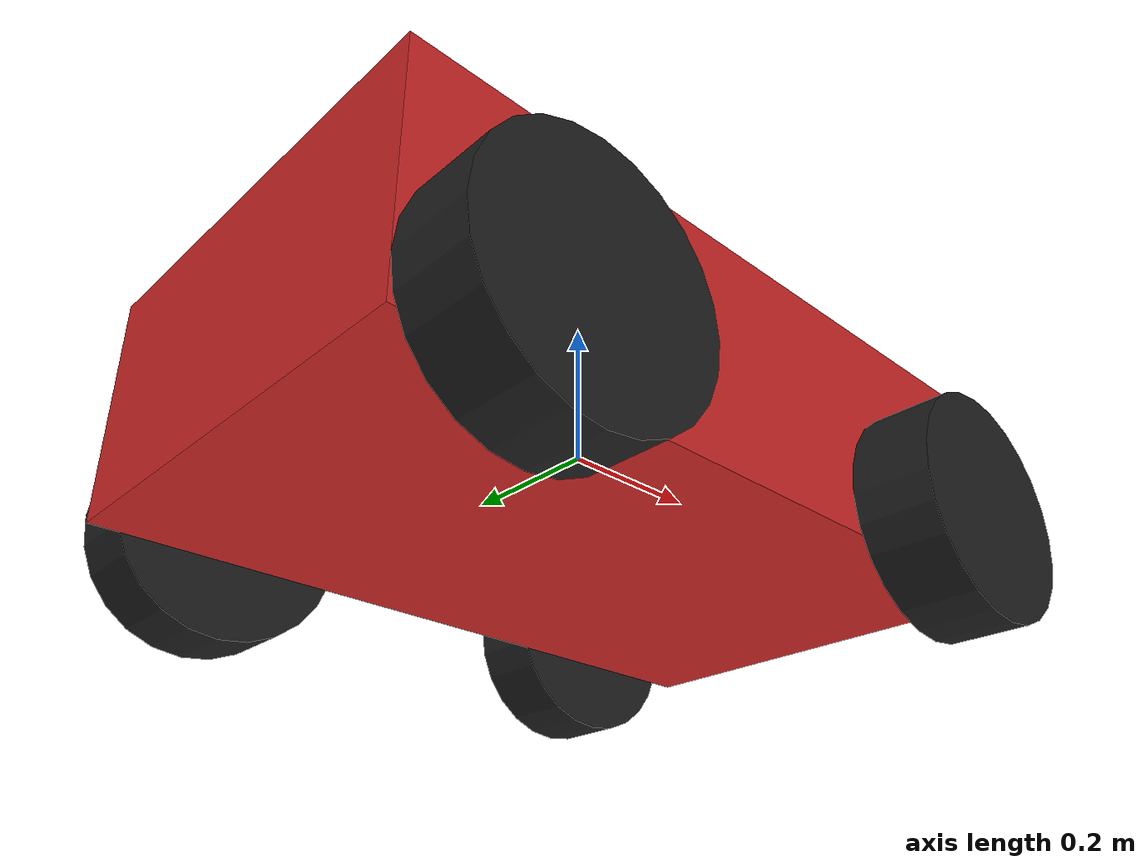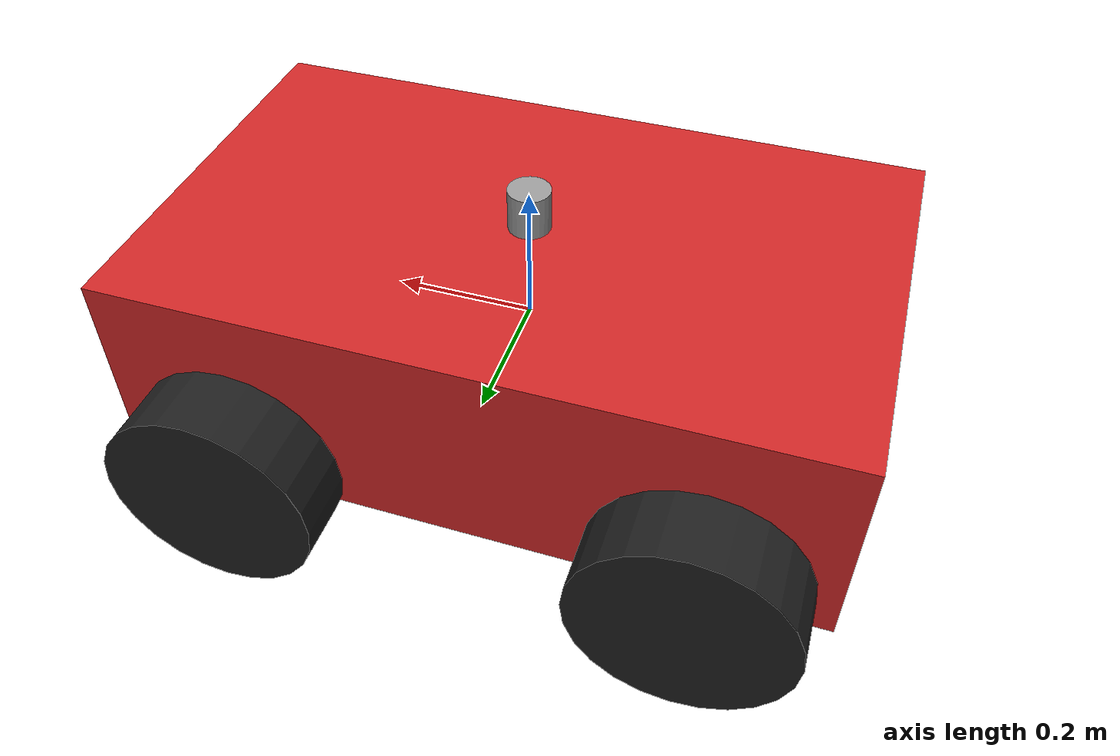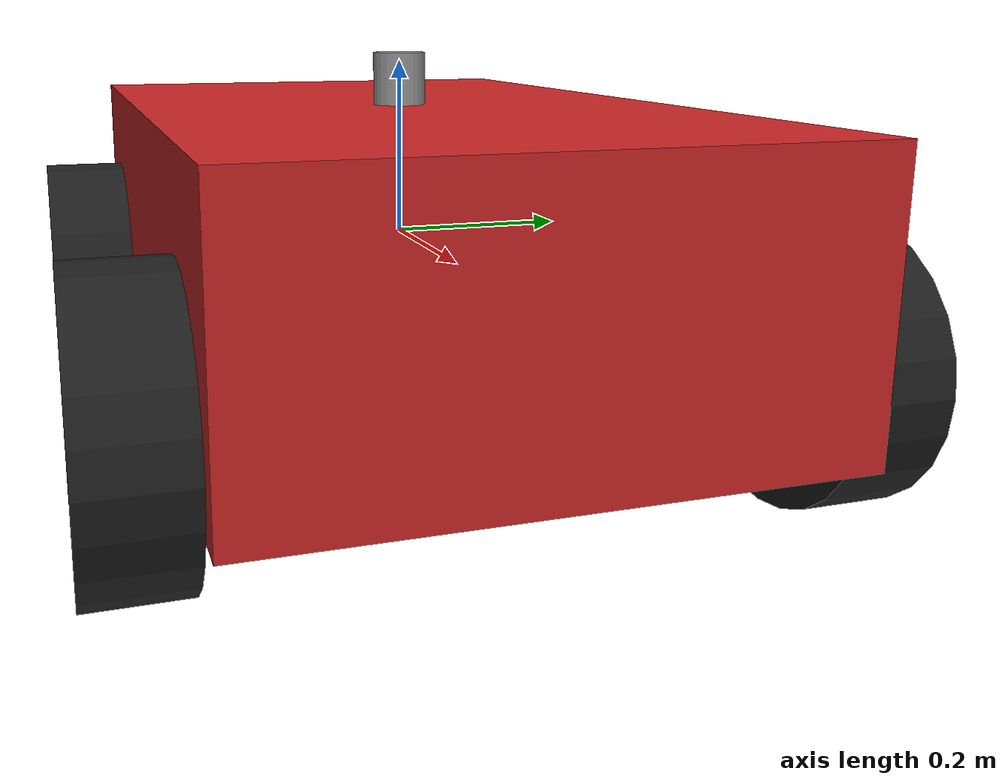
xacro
<?xml version="1.0"?>

<robot name="differential_drive_robot" xmlns:xacro="http://www.ros.org/wiki/xacro">

  <!-- Define robot parameters -->
  <xacro:property name="body_link_x_dim" value="1"/>
  <xacro:property name="body_link_y_dim" value="0.6"/>
  <xacro:property name="body_link_z_dim" value="0.3"/>

  <!-- Wheel dimensions -->
  <xacro:property name="wheel_link_radius" value="0.15"/>
  <xacro:property name="wheel_link_length" value="0.1"/>
  <xacro:property name="wheel_link_z_location" value="-0.1"/>

  <!-- Material Density -->
  <xacro:property name="body_density" value="2710.0"/>
  <xacro:property name="wheel_density" value="2710.0"/>

  <!-- Pi constant -->
  <xacro:property name="pi" value="3.14159"/>

  <!-- Robot body and wheel mass -->
  <xacro:property name="body_mass" value="${body_density * body_link_x_dim * body_link_y_dim * body_link_z_dim}"/>
  <xacro:property name="wheel_mass" value="${wheel_density * pi * wheel_link_radius * wheel_link_radius * wheel_link_length}"/>

  <!-- Moments of inertia of the wheels -->
    <xacro:property name="Iz_wheel" value="${0.5 * wheel_mass * wheel_link_radius * wheel_link_radius}"/>
    <xacro:property name="I_wheel" value="${(1.0/12.0) * wheel_mass * (3 * wheel_link_radius * wheel_link_radius + wheel_link_length * wheel_link_length)}"/>

    <!-- Complete inertal section of the wheels -->
    <xacro:macro name="inertia_wheel">
      <inertial>
        <origin xyz="0 0 0" rpy="0 0 0"/>
        <mass value="${wheel_mass}"/>
        <inertia ixx="${I_wheel}" ixy="0" ixz="0" iyy="${I_wheel}" iyz="0" izz="${Iz_wheel}"/>
        </inertial>
    </xacro:macro>

    <xacro:include filename="$(find mobile_robot)/model/robot.gazebo"/>

    <!-- FROM HERE WE DEFINE LINKS AND JOINTS -->

    <!-- Dummy Link -->
    <link name="dummy">
    </link>
    <joint name="dummy_joint" type="fixed">
      <parent link="dummy"/>
      <child link="body_link"/>
      <origin xyz="0 0 0" rpy="0 0 0"/>
    </joint>

    <!-- Body Link -->
    <link name="body_link">
        <visual>
            <origin xyz="0 0 0" rpy="0 0 0"/>
            <geometry>
                <box size="${body_link_x_dim} ${body_link_y_dim} ${body_link_z_dim}"/>
            </geometry>
        </visual>
        <collision>
            <origin xyz="0 0 0" rpy="0 0 0"/>
            <geometry>
                <box size="${body_link_x_dim} ${body_link_y_dim} ${body_link_z_dim}"/>
            </geometry>
        </collision>
        <inertial>
            <origin xyz="0 0 0" rpy="0 0 0"/>
            <mass value="${body_mass}"/>
            <inertia ixx="${(1.0/12.0) * body_mass * (body_link_y_dim * body_link_y_dim + body_link_z_dim * body_link_z_dim)}"
                     ixy="0" ixz="0"
                     iyy="${(1.0/12.0) * body_mass * (body_link_x_dim * body_link_x_dim + body_link_z_dim * body_link_z_dim)}"
                     iyz="0"
                     izz="${(1.0/12.0) * body_mass * (body_link_x_dim * body_link_x_dim + body_link_y_dim * body_link_y_dim)}"/>
        </inertial>
    </link>

    <!-- Back right Wheel Link and joint -->
    <joint name="wheel1_joint" type="continuous">
      <parent link="body_link"/>
       <child link="wheel1_link"/>
       <origin xyz="${-body_link_x_dim/2+1*wheel_link_radius} ${-body_link_y_dim/2-wheel_link_length/2} ${wheel_link_z_location}" rpy="0 0 0"/>
       <axis xyz="0 1 0"/>
       <limit effort="1000" velocity="1000"/>
       <dynamics damping="1" friction="1"/>
    </joint>

    <link name="wheel1_link">
      <visual>
        <origin xyz="0 0 0" rpy="1.570795 0 0"/>
        <geometry>
          <cylinder radius="${wheel_link_radius}" length="${wheel_link_length}"/>
        </geometry>
      </visual>
      <collision>
        <origin xyz="0 0 0" rpy="1.570795 0 0"/>
        <geometry>
          <cylinder radius="${wheel_link_radius}" length="${wheel_link_length}"/>
        </geometry>
      </collision>
      <xacro:inertia_wheel/>
    </link>

    <!-- Back left Wheel Link and joint -->
    <joint name="wheel2_joint" type="continuous">
        <parent link="body_link"/>
        <child link="wheel2_link"/>
        <origin xyz="${-body_link_x_dim/2+1.2*wheel_link_radius} ${body_link_y_dim/2+wheel_link_length/2} ${wheel_link_z_location}" rpy="0 0 0"/>
        <axis xyz="0 1 0"/>
        <limit effort="1000" velocity="1000"/>
        <dynamics damping="1" friction="1"/>
    </joint>

    <link name="wheel2_link">
      <visual>
        <origin xyz="0 0 0" rpy="1.570795 0 0"/>
        <geometry>
          <cylinder radius="${wheel_link_radius}" length="${wheel_link_length}"/>
        </geometry>
      </visual>
      <collision>
        <origin xyz="0 0 0" rpy="1.570795 0 0"/>
        <geometry>
          <cylinder radius="${wheel_link_radius}" length="${wheel_link_length}"/>
        </geometry>
      </collision>
      <xacro:inertia_wheel/>

    </link>

    <!-- Front right Wheel Link and joint -->
    <joint name="wheel3_joint" type="continuous">
        <parent link="body_link"/>
        <child link="wheel3_link"/>
        <origin xyz="${body_link_x_dim/2-1.2*wheel_link_radius} ${-body_link_y_dim/2-wheel_link_length/2} ${wheel_link_z_location}" rpy="0 0 0"/>
        <axis xyz="0 1 0"/>
        <limit effort="1000" velocity="1000"/>
        <dynamics damping="1" friction="1"/>
    </joint>

    <link name="wheel3_link">
      <visual>
        <origin xyz="0 0 0" rpy="1.570795 0 0"/>
        <geometry>
          <cylinder radius="${wheel_link_radius}" length="${wheel_link_length}"/>
        </geometry>
      </visual>
      <collision>
        <origin xyz="0 0 0" rpy="1.570795 0 0"/>
        <geometry>
          <cylinder radius="${wheel_link_radius}" length="${wheel_link_length}"/>
        </geometry>
      </collision>
      <xacro:inertia_wheel/>
    </link>

    <!-- Front left Wheel Link and joint -->
    <joint name="wheel4_joint" type="continuous">
        <parent link="body_link"/>
        <child link="wheel4_link"/>
        <origin xyz="${body_link_x_dim/2-1.2*wheel_link_radius} ${body_link_y_dim/2+wheel_link_length/2} ${wheel_link_z_location}" rpy="0 0 0"/>
        <axis xyz="0 1 0"/>
        <limit effort="1000" velocity="1000"/>
        <dynamics damping="1" friction="1"/>
    </joint>
    <link name="wheel4_link">
      <visual>
        <origin xyz="0 0 0" rpy="1.570795 0 0"/>
        <geometry>
          <cylinder radius="${wheel_link_radius}" length="${wheel_link_length}"/>
        </geometry>
      </visual>
      <collision>
        <origin xyz="0 0 0" rpy="1.570795 0 0"/>
        <geometry>
          <cylinder radius="${wheel_link_radius}" length="${wheel_link_length}"/>
        </geometry>
      </collision>
      <xacro:inertia_wheel/>
    </link>

    <!-- Lidar Link and joint -->
    <link name="lidar_link">
      <inertial>
        <origin xyz="0 0 0" rpy="0 0 0"/>
        <mass value="0.1"/>
        <inertia ixx="1e-6" ixy="0" ixz="0" iyy="1e-6" iyz="0" izz="1e-6"/>
      </inertial>
      <visual>
        <origin xyz="0 0 0" rpy="0 0 0"/>
        <geometry><cylinder radius="0.03" length="0.06"/></geometry>
        <material name="gray"/>
      </visual>
      <collision>
        <origin xyz="0 0 0" rpy="0 0 0"/>
        <geometry><cylinder radius="0.03" length="0.06"/></geometry>
      </collision>
    </link>

    <joint name="lidar_joint" type="fixed">
      <parent link="body_link"/>
      <!-- put lidar 0.2 m above the body; tweak as you like -->
      <child link="lidar_link"/>
      <origin xyz="0 0 ${body_link_z_dim/2 + 0.03}" rpy="0 0 0"/>
    </joint>

    <link name="imu_link">
      <inertial>
        <origin xyz="0 0 0" rpy="0 0 0"/>
        <mass value="0.05"/>
        <inertia ixx="1e-6" ixy="0" ixz="0" iyy="1e-6" iyz="0" izz="1e-6"/>
      </inertial>
    </link>
    <joint name="imu_joint" type="fixed">
      <parent link="body_link"/>
      <child link="imu_link"/>
      <origin xyz="0 0 0" rpy="0 0 0"/>
    </joint>

</robot>
